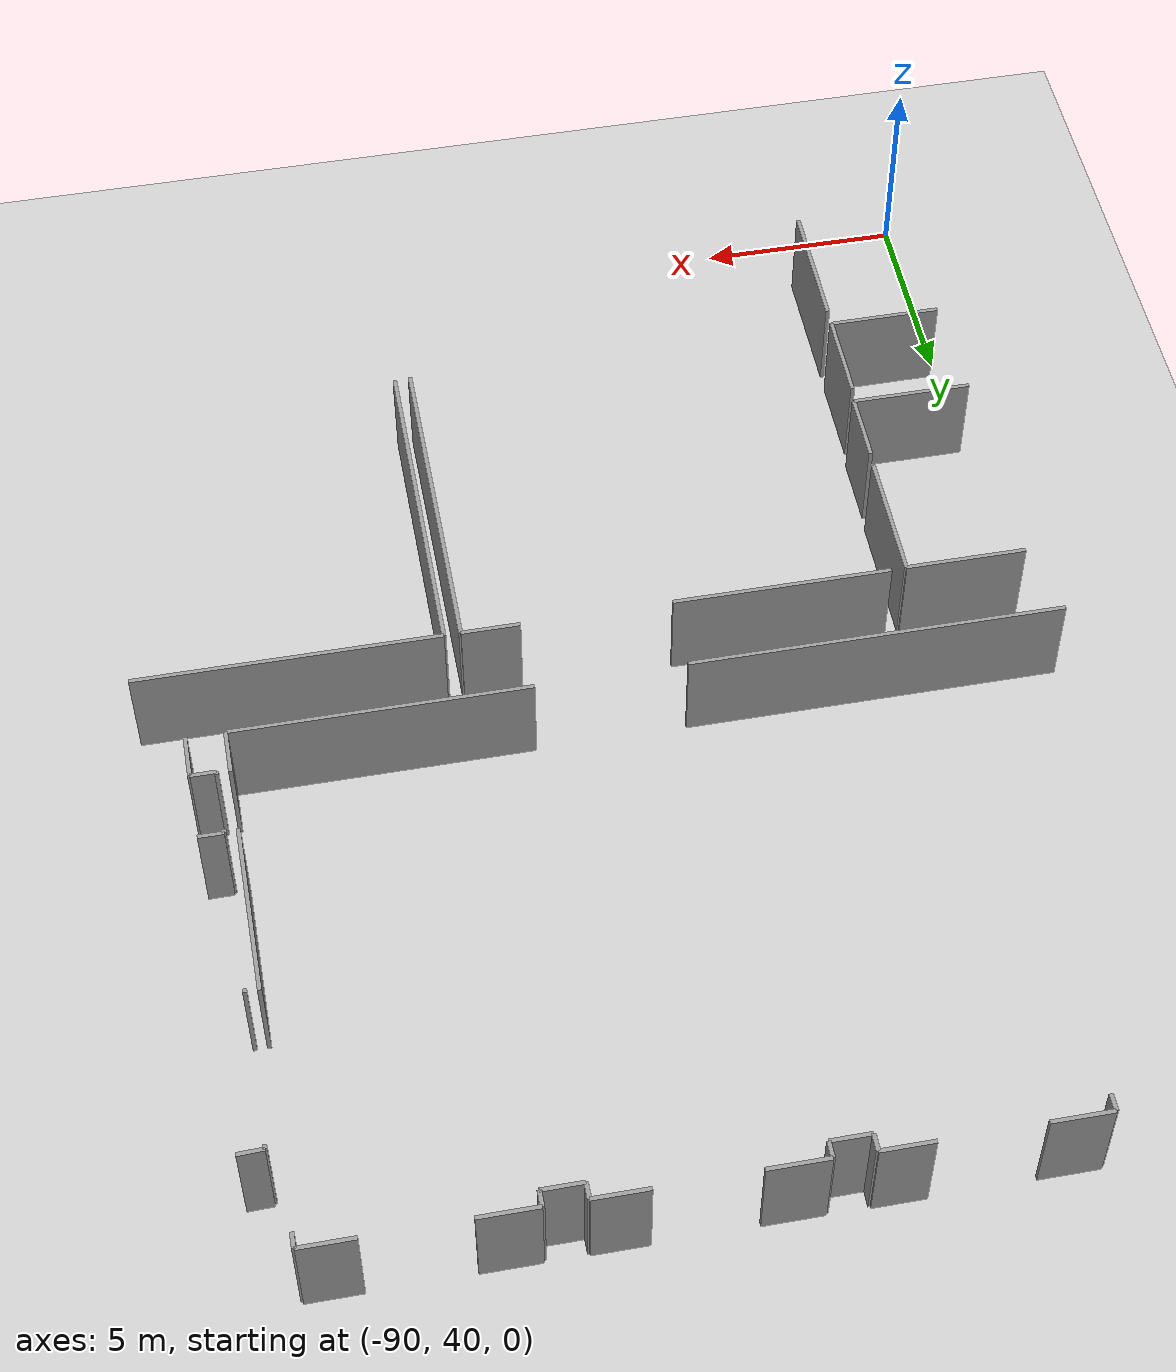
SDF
<sdf version="1.6">
 <world name="default">
  <model name="ground_plane">
   <static>1</static>
   <link name="link">
    <collision name="collision">
     <geometry><plane><normal>0 0 1</normal><size>100 100</size></plane></geometry>
     <surface><friction><ode><mu>100</mu><mu2>50</mu2></ode></friction></surface>
    </collision>
    <visual name="visual">
     <cast_shadows>0</cast_shadows>
     <geometry><plane><normal>0 0 1</normal><size>100 100</size></plane></geometry>
     <material>
      <script><uri>file://media/materials/scripts/gazebo.material</uri><name>Gazebo/Grey</name></script>
     </material>
    </visual>
   </link>
  </model>
  <model name="0510035519_A_40_1_102">
   <static>1</static>
   <link name="Wall_8">
    <collision name="Wall_8_Collision">
     <geometry><box><size>0.407167365612 0.1 2.5</size></box></geometry>
     <pose>0.203583682806 0 1.25 0 0 0</pose>
    </collision>
    <visual name="Wall_8_Visual">
     <pose>0.203583682806 0 1.25 0 0 0</pose>
     <geometry><box><size>0.407167365612 0.1 2.5</size></box></geometry>
     <material>
      <script><uri>file://media/materials/scripts/gazebo.material</uri><name>Gazebo/Grey</name></script>
      <ambient>1 1 1 1</ambient>
     </material>
    </visual>
    <pose>28.9686110052 -0.407167365612 0 0 0 1.57079632679</pose>
   </link>
   <link name="Wall_9">
    <collision name="Wall_9_Collision">
     <geometry><box><size>1.45380607447 0.1 2.5</size></box></geometry>
     <pose>0.726903037235 0 1.25 0 0 0</pose>
    </collision>
    <visual name="Wall_9_Visual">
     <pose>0.726903037235 0 1.25 0 0 0</pose>
     <geometry><box><size>1.45380607447 0.1 2.5</size></box></geometry>
     <material>
      <script><uri>file://media/materials/scripts/gazebo.material</uri><name>Gazebo/Grey</name></script>
      <ambient>1 1 1 1</ambient>
     </material>
    </visual>
    <pose>28.9686110052 -0.0 0 0 0 0.0</pose>
   </link>
   <link name="Wall_10">
    <collision name="Wall_10_Collision">
     <geometry><box><size>1.26293048672 0.1 2.5</size></box></geometry>
     <pose>0.63146524336 0 1.25 0 0 0</pose>
    </collision>
    <visual name="Wall_10_Visual">
     <pose>0.63146524336 0 1.25 0 0 0</pose>
     <geometry><box><size>1.26293048672 0.1 2.5</size></box></geometry>
     <material>
      <script><uri>file://media/materials/scripts/gazebo.material</uri><name>Gazebo/Grey</name></script>
      <ambient>1 1 1 1</ambient>
     </material>
    </visual>
    <pose>32.8486465879 -0.0 0 0 0 0.0</pose>
   </link>
   <link name="Wall_11">
    <collision name="Wall_11_Collision">
     <geometry><box><size>0.415554708349 0.1 2.5</size></box></geometry>
     <pose>0.207777354175 0 1.25 0 0 0</pose>
    </collision>
    <visual name="Wall_11_Visual">
     <pose>0.207777354175 0 1.25 0 0 0</pose>
     <geometry><box><size>0.415554708349 0.1 2.5</size></box></geometry>
     <material>
      <script><uri>file://media/materials/scripts/gazebo.material</uri><name>Gazebo/Grey</name></script>
      <ambient>1 1 1 1</ambient>
     </material>
    </visual>
    <pose>34.1115770746 -0.0 0 0 0 -1.57079632679</pose>
   </link>
   <link name="Wall_12">
    <collision name="Wall_12_Collision">
     <geometry><box><size>0.963781929089 0.1 2.5</size></box></geometry>
     <pose>0.481890964544 0 1.25 0 0 0</pose>
    </collision>
    <visual name="Wall_12_Visual">
     <pose>0.481890964544 0 1.25 0 0 0</pose>
     <geometry><box><size>0.963781929089 0.1 2.5</size></box></geometry>
     <material>
      <script><uri>file://media/materials/scripts/gazebo.material</uri><name>Gazebo/Grey</name></script>
      <ambient>1 1 1 1</ambient>
     </material>
    </visual>
    <pose>34.1115770746 -0.415554708349 0 0 0 0.0</pose>
   </link>
   <link name="Wall_13">
    <collision name="Wall_13_Collision">
     <geometry><box><size>0.398780022875 0.1 2.5</size></box></geometry>
     <pose>0.199390011437 0 1.25 0 0 0</pose>
    </collision>
    <visual name="Wall_13_Visual">
     <pose>0.199390011437 0 1.25 0 0 0</pose>
     <geometry><box><size>0.398780022875 0.1 2.5</size></box></geometry>
     <material>
      <script><uri>file://media/materials/scripts/gazebo.material</uri><name>Gazebo/Grey</name></script>
      <ambient>1 1 1 1</ambient>
     </material>
    </visual>
    <pose>35.0753590037 -0.415554708349 0 0 0 1.57079632679</pose>
   </link>
   <link name="Wall_14">
    <collision name="Wall_14_Collision">
     <geometry><box><size>1.44567289363 0.1 2.5</size></box></geometry>
     <pose>0.722836446817 0 1.25 0 0 0</pose>
    </collision>
    <visual name="Wall_14_Visual">
     <pose>0.722836446817 0 1.25 0 0 0</pose>
     <geometry><box><size>1.44567289363 0.1 2.5</size></box></geometry>
     <material>
      <script><uri>file://media/materials/scripts/gazebo.material</uri><name>Gazebo/Grey</name></script>
      <ambient>1 1 1 1</ambient>
     </material>
    </visual>
    <pose>35.0753590037 -0.0167746854746 0 0 0 0.0</pose>
   </link>
   <link name="Wall_15">
    <collision name="Wall_15_Collision">
     <geometry><box><size>1.32215020968 0.1 2.5</size></box></geometry>
     <pose>0.661075104842 0 1.25 0 0 0</pose>
    </collision>
    <visual name="Wall_15_Visual">
     <pose>0.661075104842 0 1.25 0 0 0</pose>
     <geometry><box><size>1.32215020968 0.1 2.5</size></box></geometry>
     <material>
      <script><uri>file://media/materials/scripts/gazebo.material</uri><name>Gazebo/Grey</name></script>
      <ambient>1 1 1 1</ambient>
     </material>
    </visual>
    <pose>38.8987164824 -0.0167746854746 0 0 0 0.0</pose>
   </link>
   <link name="Wall_16">
    <collision name="Wall_16_Collision">
     <geometry><box><size>0.391663489643 0.1 2.5</size></box></geometry>
     <pose>0.195831744821 0 1.25 0 0 0</pose>
    </collision>
    <visual name="Wall_16_Visual">
     <pose>0.195831744821 0 1.25 0 0 0</pose>
     <geometry><box><size>0.391663489643 0.1 2.5</size></box></geometry>
     <material>
      <script><uri>file://media/materials/scripts/gazebo.material</uri><name>Gazebo/Grey</name></script>
      <ambient>1 1 1 1</ambient>
     </material>
    </visual>
    <pose>40.2208666921 -0.0167746854746 0 0 0 -1.57079632679</pose>
   </link>
   <link name="Wall_17">
    <collision name="Wall_17_Collision">
     <geometry><box><size>0.980048290761 0.1 2.5</size></box></geometry>
     <pose>0.490024145381 0 1.25 0 0 0</pose>
    </collision>
    <visual name="Wall_17_Visual">
     <pose>0.490024145381 0 1.25 0 0 0</pose>
     <geometry><box><size>0.980048290761 0.1 2.5</size></box></geometry>
     <material>
      <script><uri>file://media/materials/scripts/gazebo.material</uri><name>Gazebo/Grey</name></script>
      <ambient>1 1 1 1</ambient>
     </material>
    </visual>
    <pose>40.2208666921 -0.408438175118 0 0 0 0.0</pose>
   </link>
   <link name="Wall_18">
    <collision name="Wall_18_Collision">
     <geometry><box><size>0.379972042191 0.1 2.5</size></box></geometry>
     <pose>0.189986021095 0 1.25 0 0 0</pose>
    </collision>
    <visual name="Wall_18_Visual">
     <pose>0.189986021095 0 1.25 0 0 0</pose>
     <geometry><box><size>0.379972042191 0.1 2.5</size></box></geometry>
     <material>
      <script><uri>file://media/materials/scripts/gazebo.material</uri><name>Gazebo/Grey</name></script>
      <ambient>1 1 1 1</ambient>
     </material>
    </visual>
    <pose>41.2009149828 -0.408438175118 0 0 0 1.57079632679</pose>
   </link>
   <link name="Wall_19">
    <collision name="Wall_19_Collision">
     <geometry><box><size>1.40653196086 0.1 2.5</size></box></geometry>
     <pose>0.70326598043 0 1.25 0 0 0</pose>
    </collision>
    <visual name="Wall_19_Visual">
     <pose>0.70326598043 0 1.25 0 0 0</pose>
     <geometry><box><size>1.40653196086 0.1 2.5</size></box></geometry>
     <material>
      <script><uri>file://media/materials/scripts/gazebo.material</uri><name>Gazebo/Grey</name></script>
      <ambient>1 1 1 1</ambient>
     </material>
    </visual>
    <pose>41.2009149828 -0.0284661329267 0 0 0 0.0</pose>
   </link>
   <link name="Wall_20">
    <collision name="Wall_20_Collision">
     <geometry><box><size>1.31096708603 0.1 2.5</size></box></geometry>
     <pose>0.655483543017 0 1.25 0 0 0</pose>
    </collision>
    <visual name="Wall_20_Visual">
     <pose>0.655483543017 0 1.25 0 0 0</pose>
     <geometry><box><size>1.31096708603 0.1 2.5</size></box></geometry>
     <material>
      <script><uri>file://media/materials/scripts/gazebo.material</uri><name>Gazebo/Grey</name></script>
      <ambient>1 1 1 1</ambient>
     </material>
    </visual>
    <pose>45.0202058711 -0.0284661329267 0 0 0 0.0</pose>
   </link>
   <link name="Wall_21">
    <collision name="Wall_21_Collision">
     <geometry><box><size>0.376159613674 0.1 2.5</size></box></geometry>
     <pose>0.188079806837 0 1.25 0 0 0</pose>
    </collision>
    <visual name="Wall_21_Visual">
     <pose>0.188079806837 0 1.25 0 0 0</pose>
     <geometry><box><size>0.376159613674 0.1 2.5</size></box></geometry>
     <material>
      <script><uri>file://media/materials/scripts/gazebo.material</uri><name>Gazebo/Grey</name></script>
      <ambient>1 1 1 1</ambient>
     </material>
    </visual>
    <pose>46.3311729572 -0.0284661329267 0 0 0 -1.57079632679</pose>
   </link>
   <link name="Wall_22">
    <collision name="Wall_22_Collision">
     <geometry><box><size>4.28186554835 0.1 2.5</size></box></geometry>
     <pose>2.14093277418 0 1.25 0 0 0</pose>
    </collision>
    <visual name="Wall_22_Visual">
     <pose>2.14093277418 0 1.25 0 0 0</pose>
     <geometry><box><size>4.28186554835 0.1 2.5</size></box></geometry>
     <material>
      <script><uri>file://media/materials/scripts/gazebo.material</uri><name>Gazebo/Grey</name></script>
      <ambient>1 1 1 1</ambient>
     </material>
    </visual>
    <pose>46.3311729572 -6.22315414919 0 0 0 -1.57079632679</pose>
   </link>
   <link name="Wall_23">
    <collision name="Wall_23_Collision">
     <geometry><box><size>1.13330791714 0.1 2.5</size></box></geometry>
     <pose>0.566653958572 0 1.25 0 0 0</pose>
    </collision>
    <visual name="Wall_23_Visual">
     <pose>0.566653958572 0 1.25 0 0 0</pose>
     <geometry><box><size>1.13330791714 0.1 2.5</size></box></geometry>
     <material>
      <script><uri>file://media/materials/scripts/gazebo.material</uri><name>Gazebo/Grey</name></script>
      <ambient>1 1 1 1</ambient>
     </material>
    </visual>
    <pose>46.3311729572 -12.1092896175 0 0 0 -1.57079632679</pose>
   </link>
   <link name="Wall_24">
    <collision name="Wall_24_Collision">
     <geometry><box><size>7.2352268395 0.1 2.5</size></box></geometry>
     <pose>3.61761341975 0 1.25 0 0 0</pose>
    </collision>
    <visual name="Wall_24_Visual">
     <pose>3.61761341975 0 1.25 0 0 0</pose>
     <geometry><box><size>7.2352268395 0.1 2.5</size></box></geometry>
     <material>
      <script><uri>file://media/materials/scripts/gazebo.material</uri><name>Gazebo/Grey</name></script>
      <ambient>1 1 1 1</ambient>
     </material>
    </visual>
    <pose>46.3311729572 -13.2425975346 0 0 0 3.14159265359</pose>
   </link>
   <link name="Wall_25">
    <collision name="Wall_25_Collision">
     <geometry><box><size>9.1907485068 0.1 2.5</size></box></geometry>
     <pose>4.5953742534 0 1.25 0 0 0</pose>
    </collision>
    <visual name="Wall_25_Visual">
     <pose>4.5953742534 0 1.25 0 0 0</pose>
     <geometry><box><size>9.1907485068 0.1 2.5</size></box></geometry>
     <material>
      <script><uri>file://media/materials/scripts/gazebo.material</uri><name>Gazebo/Grey</name></script>
      <ambient>1 1 1 1</ambient>
     </material>
    </visual>
    <pose>35.4339814462 -13.2425975346 0 0 0 3.14159265359</pose>
   </link>
   <link name="Wall_54">
    <collision name="Wall_54_Collision">
     <geometry><box><size>1.09340449867 0.1 2.5</size></box></geometry>
     <pose>0.546702249333 0 1.25 0 0 0</pose>
    </collision>
    <visual name="Wall_54_Visual">
     <pose>0.546702249333 0 1.25 0 0 0</pose>
     <geometry><box><size>1.09340449867 0.1 2.5</size></box></geometry>
     <material>
      <script><uri>file://media/materials/scripts/gazebo.material</uri><name>Gazebo/Grey</name></script>
      <ambient>1 1 1 1</ambient>
     </material>
    </visual>
    <pose>47.2639471343 -13.2522556869 0 0 0 1.57079632679</pose>
   </link>
   <link name="Wall_55">
    <collision name="Wall_55_Collision">
     <geometry><box><size>0.612784343627 0.1 2.5</size></box></geometry>
     <pose>0.306392171813 0 1.25 0 0 0</pose>
    </collision>
    <visual name="Wall_55_Visual">
     <pose>0.306392171813 0 1.25 0 0 0</pose>
     <geometry><box><size>0.612784343627 0.1 2.5</size></box></geometry>
     <material>
      <script><uri>file://media/materials/scripts/gazebo.material</uri><name>Gazebo/Grey</name></script>
      <ambient>1 1 1 1</ambient>
     </material>
    </visual>
    <pose>47.2639471343 -12.1588511882 0 0 0 3.14159265359</pose>
   </link>
   <link name="Wall_56">
    <collision name="Wall_56_Collision">
     <geometry><box><size>0.0721819799212 0.1 2.5</size></box></geometry>
     <pose>0.0360909899606 0 1.25 0 0 0</pose>
    </collision>
    <visual name="Wall_56_Visual">
     <pose>0.0360909899606 0 1.25 0 0 0</pose>
     <geometry><box><size>0.0721819799212 0.1 2.5</size></box></geometry>
     <material>
      <script><uri>file://media/materials/scripts/gazebo.material</uri><name>Gazebo/Grey</name></script>
      <ambient>1 1 1 1</ambient>
     </material>
    </visual>
    <pose>46.6511627907 -12.1588511882 0 0 0 1.57079632679</pose>
   </link>
   <link name="Wall_57">
    <collision name="Wall_57_Collision">
     <geometry><box><size>0.0831109416698 0.1 2.5</size></box></geometry>
     <pose>0.0415554708349 0 1.25 0 0 0</pose>
    </collision>
    <visual name="Wall_57_Visual">
     <pose>0.0415554708349 0 1.25 0 0 0</pose>
     <geometry><box><size>0.0831109416698 0.1 2.5</size></box></geometry>
     <material>
      <script><uri>file://media/materials/scripts/gazebo.material</uri><name>Gazebo/Grey</name></script>
      <ambient>1 1 1 1</ambient>
     </material>
    </visual>
    <pose>46.6511627907 -10.5355191257 0 0 0 1.57079632679</pose>
   </link>
   <link name="Wall_58">
    <collision name="Wall_58_Collision">
     <geometry><box><size>0.612784343627 0.1 2.5</size></box></geometry>
     <pose>0.306392171813 0 1.25 0 0 0</pose>
    </collision>
    <visual name="Wall_58_Visual">
     <pose>0.306392171813 0 1.25 0 0 0</pose>
     <geometry><box><size>0.612784343627 0.1 2.5</size></box></geometry>
     <material>
      <script><uri>file://media/materials/scripts/gazebo.material</uri><name>Gazebo/Grey</name></script>
      <ambient>1 1 1 1</ambient>
     </material>
    </visual>
    <pose>46.6511627907 -10.452408184 0 0 0 0.0</pose>
   </link>
   <link name="Wall_61">
    <collision name="Wall_61_Collision">
     <geometry><box><size>0.0937857415173 0.1 2.5</size></box></geometry>
     <pose>0.0468928707587 0 1.25 0 0 0</pose>
    </collision>
    <visual name="Wall_61_Visual">
     <pose>0.0468928707587 0 1.25 0 0 0</pose>
     <geometry><box><size>0.0937857415173 0.1 2.5</size></box></geometry>
     <material>
      <script><uri>file://media/materials/scripts/gazebo.material</uri><name>Gazebo/Grey</name></script>
      <ambient>1 1 1 1</ambient>
     </material>
    </visual>
    <pose>46.6511627907 -6.3138899479 0 0 0 1.57079632679</pose>
   </link>
   <link name="Wall_62">
    <collision name="Wall_62_Collision">
     <geometry><box><size>0.108527131783 0.1 2.5</size></box></geometry>
     <pose>0.0542635658915 0 1.25 0 0 0</pose>
    </collision>
    <visual name="Wall_62_Visual">
     <pose>0.0542635658915 0 1.25 0 0 0</pose>
     <geometry><box><size>0.108527131783 0.1 2.5</size></box></geometry>
     <material>
      <script><uri>file://media/materials/scripts/gazebo.material</uri><name>Gazebo/Grey</name></script>
      <ambient>1 1 1 1</ambient>
     </material>
    </visual>
    <pose>46.6511627907 -2.49205744059 0 0 0 1.57079632679</pose>
   </link>
   <link name="Wall_63">
    <collision name="Wall_63_Collision">
     <geometry><box><size>0.619480570046 0.1 2.5</size></box></geometry>
     <pose>0.309740285023 0 1.25 0 0 0</pose>
    </collision>
    <visual name="Wall_63_Visual">
     <pose>0.309740285023 0 1.25 0 0 0</pose>
     <geometry><box><size>0.619480570046 0.1 2.5</size></box></geometry>
     <material>
      <script><uri>file://media/materials/scripts/gazebo.material</uri><name>Gazebo/Grey</name></script>
      <ambient>1 1 1 1</ambient>
     </material>
    </visual>
    <pose>46.6511627907 -2.38353030881 0 0 0 0.033238984971</pose>
   </link>
   <link name="Wall_71">
    <collision name="Wall_71_Collision">
     <geometry><box><size>3.3254543144 0.1 2.5</size></box></geometry>
     <pose>1.6627271572 0 1.25 0 0 0</pose>
    </collision>
    <visual name="Wall_71_Visual">
     <pose>1.6627271572 0 1.25 0 0 0</pose>
     <geometry><box><size>3.3254543144 0.1 2.5</size></box></geometry>
     <material>
      <script><uri>file://media/materials/scripts/gazebo.material</uri><name>Gazebo/Grey</name></script>
      <ambient>1 1 1 1</ambient>
     </material>
    </visual>
    <pose>29.6772143856 -18.4640996315 0 0 0 1.57079632679</pose>
   </link>
   <link name="Wall_72">
    <collision name="Wall_72_Collision">
     <geometry><box><size>2.97471089084 0.1 2.5</size></box></geometry>
     <pose>1.48735544542 0 1.25 0 0 0</pose>
    </collision>
    <visual name="Wall_72_Visual">
     <pose>1.48735544542 0 1.25 0 0 0</pose>
     <geometry><box><size>2.97471089084 0.1 2.5</size></box></geometry>
     <material>
      <script><uri>file://media/materials/scripts/gazebo.material</uri><name>Gazebo/Grey</name></script>
      <ambient>1 1 1 1</ambient>
     </material>
    </visual>
    <pose>29.6772143856 -15.1386453171 0 0 0 3.14159265359</pose>
   </link>
   <link name="Wall_79">
    <collision name="Wall_79_Collision">
     <geometry><box><size>1.79184140297 0.1 2.5</size></box></geometry>
     <pose>0.895920701487 0 1.25 0 0 0</pose>
    </collision>
    <visual name="Wall_79_Visual">
     <pose>0.895920701487 0 1.25 0 0 0</pose>
     <geometry><box><size>1.79184140297 0.1 2.5</size></box></geometry>
     <material>
      <script><uri>file://media/materials/scripts/gazebo.material</uri><name>Gazebo/Grey</name></script>
      <ambient>1 1 1 1</ambient>
     </material>
    </visual>
    <pose>29.6436650146 -18.8562714449 0 0 0 -1.57079632679</pose>
   </link>
   <link name="Wall_80">
    <collision name="Wall_80_Collision">
     <geometry><box><size>2.99097725251 0.1 2.5</size></box></geometry>
     <pose>1.49548862625 0 1.25 0 0 0</pose>
    </collision>
    <visual name="Wall_80_Visual">
     <pose>1.49548862625 0 1.25 0 0 0</pose>
     <geometry><box><size>2.99097725251 0.1 2.5</size></box></geometry>
     <material>
      <script><uri>file://media/materials/scripts/gazebo.material</uri><name>Gazebo/Grey</name></script>
      <ambient>1 1 1 1</ambient>
     </material>
    </visual>
    <pose>29.6436650146 -20.6481128479 0 0 0 3.14159265359</pose>
   </link>
   <link name="Wall_88">
    <collision name="Wall_88_Collision">
     <geometry><box><size>2.32558139535 0.1 2.5</size></box></geometry>
     <pose>1.16279069767 0 1.25 0 0 0</pose>
    </collision>
    <visual name="Wall_88_Visual">
     <pose>1.16279069767 0 1.25 0 0 0</pose>
     <geometry><box><size>2.32558139535 0.1 2.5</size></box></geometry>
     <material>
      <script><uri>file://media/materials/scripts/gazebo.material</uri><name>Gazebo/Grey</name></script>
      <ambient>1 1 1 1</ambient>
     </material>
    </visual>
    <pose>29.5750413013 -21.0623967467 0 0 0 -1.57079632679</pose>
   </link>
   <link name="Wall_89">
    <collision name="Wall_89_Collision">
     <geometry><box><size>2.81408612452 0.1 2.5</size></box></geometry>
     <pose>1.40704306226 0 1.25 0 0 0</pose>
    </collision>
    <visual name="Wall_89_Visual">
     <pose>1.40704306226 0 1.25 0 0 0</pose>
     <geometry><box><size>2.81408612452 0.1 2.5</size></box></geometry>
     <material>
      <script><uri>file://media/materials/scripts/gazebo.material</uri><name>Gazebo/Grey</name></script>
      <ambient>1 1 1 1</ambient>
     </material>
    </visual>
    <pose>29.5750413013 -23.3879781421 0 0 0 -3.13960566199</pose>
   </link>
   <link name="Wall_91">
    <collision name="Wall_91_Collision">
     <geometry><box><size>3.40805693227 0.1 2.5</size></box></geometry>
     <pose>1.70402846613 0 1.25 0 0 0</pose>
    </collision>
    <visual name="Wall_91_Visual">
     <pose>1.70402846613 0 1.25 0 0 0</pose>
     <geometry><box><size>3.40805693227 0.1 2.5</size></box></geometry>
     <material>
      <script><uri>file://media/materials/scripts/gazebo.material</uri><name>Gazebo/Grey</name></script>
      <ambient>1 1 1 1</ambient>
     </material>
    </visual>
    <pose>29.5676706062 -23.8434362689 0 0 0 -1.57079632679</pose>
   </link>
   <link name="Wall_96">
    <collision name="Wall_96_Collision">
     <geometry><box><size>5.37806582793 0.1 2.5</size></box></geometry>
     <pose>2.68903291397 0 1.25 0 0 0</pose>
    </collision>
    <visual name="Wall_96_Visual">
     <pose>2.68903291397 0 1.25 0 0 0</pose>
     <geometry><box><size>5.37806582793 0.1 2.5</size></box></geometry>
     <material>
      <script><uri>file://media/materials/scripts/gazebo.material</uri><name>Gazebo/Grey</name></script>
      <ambient>1 1 1 1</ambient>
     </material>
    </visual>
    <pose>30.046257466 -15.1211081459 0 0 0 0.0</pose>
   </link>
   <link name="Wall_97">
    <collision name="Wall_97_Collision">
     <geometry><box><size>1.43321896048 0.1 2.5</size></box></geometry>
     <pose>0.716609480239 0 1.25 0 0 0</pose>
    </collision>
    <visual name="Wall_97_Visual">
     <pose>0.716609480239 0 1.25 0 0 0</pose>
     <geometry><box><size>1.43321896048 0.1 2.5</size></box></geometry>
     <material>
      <script><uri>file://media/materials/scripts/gazebo.material</uri><name>Gazebo/Grey</name></script>
      <ambient>1 1 1 1</ambient>
     </material>
    </visual>
    <pose>39.1137374508 -15.1211081459 0 0 0 0.0</pose>
   </link>
   <link name="Wall_98">
    <collision name="Wall_98_Collision">
     <geometry><box><size>8.3812428517 0.1 2.5</size></box></geometry>
     <pose>4.19062142585 0 1.25 0 0 0</pose>
    </collision>
    <visual name="Wall_98_Visual">
     <pose>4.19062142585 0 1.25 0 0 0</pose>
     <geometry><box><size>8.3812428517 0.1 2.5</size></box></geometry>
     <material>
      <script><uri>file://media/materials/scripts/gazebo.material</uri><name>Gazebo/Grey</name></script>
      <ambient>1 1 1 1</ambient>
     </material>
    </visual>
    <pose>40.5469564112 -15.1211081459 0 0 0 -1.57079632679</pose>
   </link>
   <link name="Wall_102">
    <collision name="Wall_102_Collision">
     <geometry><box><size>7.45863515059 0.1 2.5</size></box></geometry>
     <pose>3.7293175753 0 1.25 0 0 0</pose>
    </collision>
    <visual name="Wall_102_Visual">
     <pose>3.7293175753 0 1.25 0 0 0</pose>
     <geometry><box><size>7.45863515059 0.1 2.5</size></box></geometry>
     <material>
      <script><uri>file://media/materials/scripts/gazebo.material</uri><name>Gazebo/Grey</name></script>
      <ambient>1 1 1 1</ambient>
     </material>
    </visual>
    <pose>40.9520904816 -15.1200914983 0 0 0 0.0</pose>
   </link>
   <link name="Wall_111">
    <collision name="Wall_111_Collision">
     <geometry><box><size>8.34109243119 0.1 2.5</size></box></geometry>
     <pose>4.17054621559 0 1.25 0 0 0</pose>
    </collision>
    <visual name="Wall_111_Visual">
     <pose>4.17054621559 0 1.25 0 0 0</pose>
     <geometry><box><size>8.34109243119 0.1 2.5</size></box></geometry>
     <material>
      <script><uri>file://media/materials/scripts/gazebo.material</uri><name>Gazebo/Grey</name></script>
      <ambient>1 1 1 1</ambient>
     </material>
    </visual>
    <pose>40.9411615199 -23.4611767696 0 0 0 1.56948607098</pose>
   </link>
   <pose>-116.6 68.721527513 0 0 0 0</pose>
  </model>
 </world>
</sdf>
